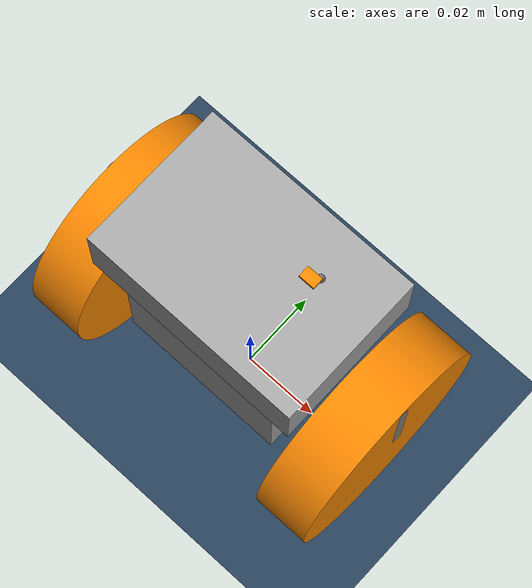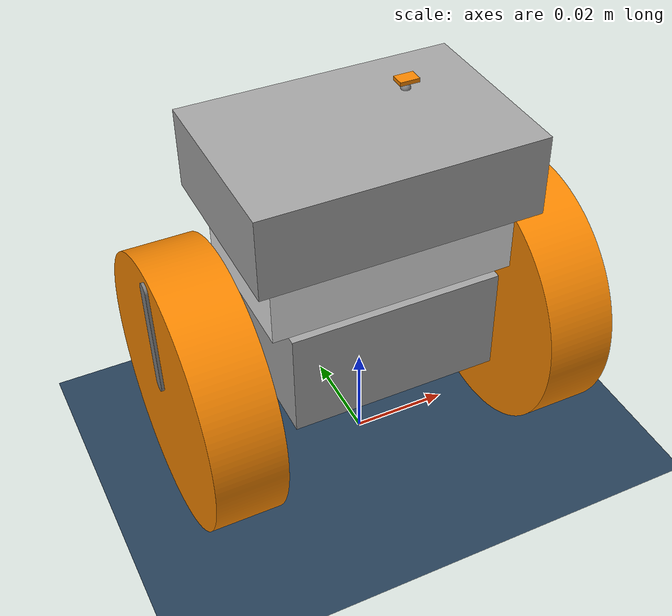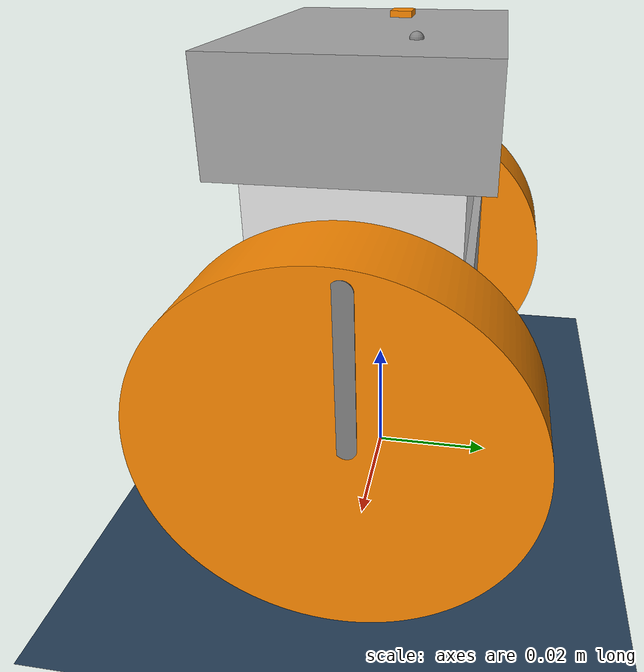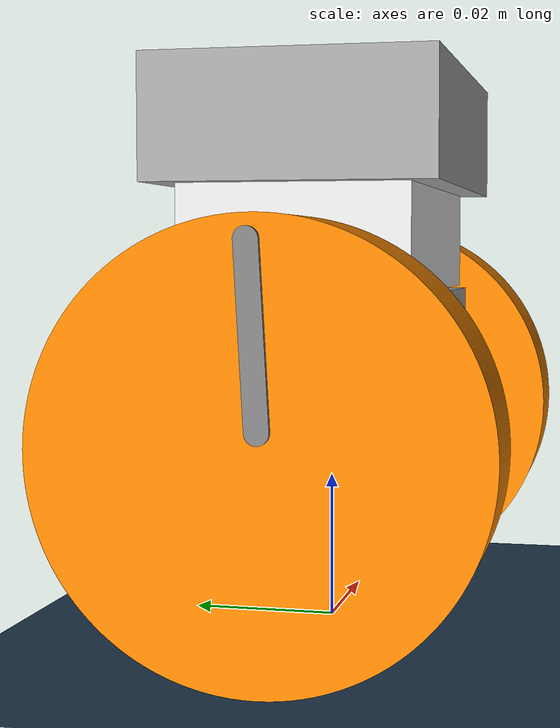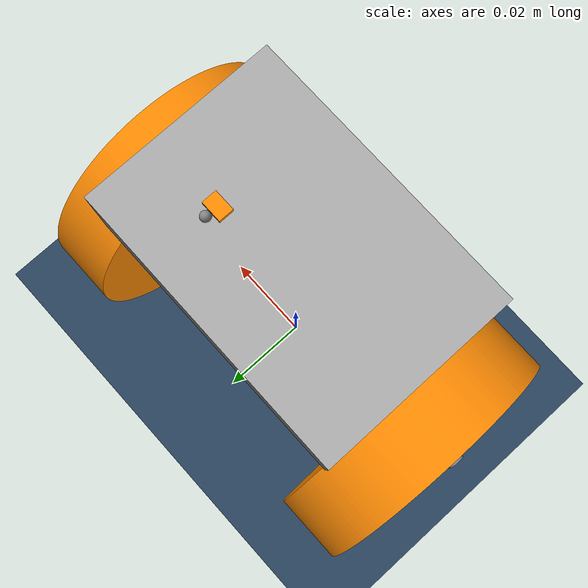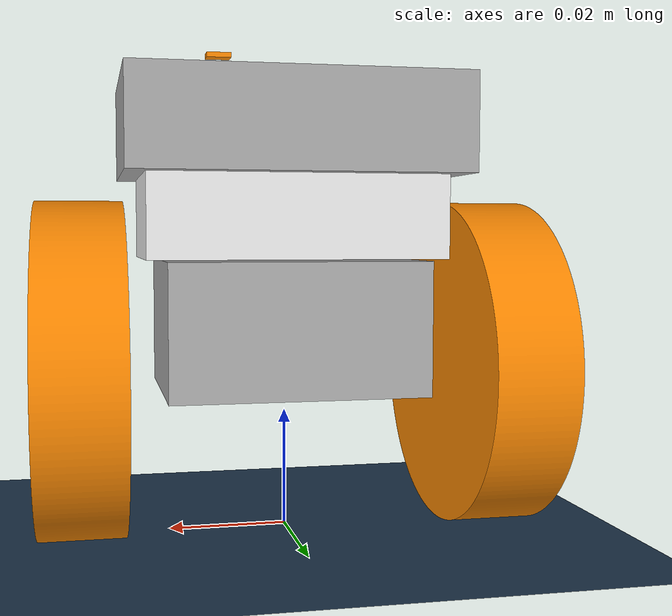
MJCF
<mujoco model="balance robot">
  <compiler angle="radian" meshdir="assembly_simplified/meshes/"/>

  <option timestep="0.005" integrator="implicitfast"/>

  <visual>
    <map znear="0.001" zfar="10"/>
    <scale contactwidth="0.1" contactheight="0.03"/>
  </visual>

  <default>
    <geom friction="0.8 0.005 0.005"/>
  </default>

  <asset>
    <texture type="2d" colorspace="auto" name="grid" builtin="checker" mark="edge" rgb1="0.1 0.2 0.3" rgb2="0.2 0.3 0.4" markrgb="0.2 0.3 0.4" width="300" height="300"/>
    <material name="grid" texture="grid" texuniform="true" texrepeat="2 2"/>
    <mesh name="motor_base" content_type="model/stl" file="Motor_base.stl"/>
    <mesh name="lipos" content_type="model/stl" file="Lipos.stl"/>
    <mesh name="electronics" content_type="model/stl" file="Electronics.stl"/>
    <mesh name="sensor_imu" content_type="model/stl" file="sensor_imu.stl"/>
    <mesh name="wheel_1" content_type="model/stl" file="Wheel.stl"/>
    <mesh name="mark_wheel_1" content_type="model/stl" file="mark_wheel.stl"/>
    <mesh name="wheel" content_type="model/stl" file="Wheel.stl"/>
    <mesh name="mark_wheel" content_type="model/stl" file="mark_wheel.stl"/>
  </asset>

  <worldbody>
    <geom name="ground" size="200 200 0.1" type="plane" material="grid"/>
    <light pos="0 0 100" dir="0 0 -1" ambient="0.4 0.4 0.4"/>
    <body name="root">
      <joint name="_root" type="free"/>
      <body name="motor_base">
        <geom name="geom_motor_base" pos="0 0 0.0348586" quat="1 0 0 0" type="mesh" mass="0.0422448" rgba="0.647059 0.647059 0.647059 1" mesh="motor_base"/>
        <body name="lipos" pos="0 0 0.0450128">
          <geom name="geom_lipos" pos="0 0.00015 -0.0101542" quat="1 0 0 0" type="mesh" mass="0.040025" rgba="0.901961 0.901961 0.901961 1" mesh="lipos"/>
          <body name="electronics" pos="0 0 0.01525">
            <geom name="geom_electronics" pos="0 0 -0.0254042" quat="1 0 0 0" type="mesh" mass="0.032" rgba="0.647059 0.647059 0.647059 1" mesh="electronics"/>
            <body name="sensor_imu" pos="0.013 0.007 0.0162">
              <geom name="geom_sensor_imu" pos="-0.013 -0.007 -0.0416042" type="mesh" mass="0" rgba="0.972549 0.529412 0.00392157 1" mesh="sensor_imu"/>
              <site name="site_sensor_imu" pos="0 0 0" size="0.001"/>
            </body>
          </body>
        </body>
      </body>
      <body name="sketch_wheelbase__1_">
        <body name="wheel_1" pos="-0.02765 0 0.028">
          <joint name="joint_wheel_left" pos="0 0 0" axis="1 0 0" armature="0.00018" damping="0.001" frictionloss="0.001"/>
          <geom name="geom_wheel_1" pos="0.02765 0 0.00685857" quat="0.999624 0.0274121 0 0" type="mesh" mass="0.02" rgba="0.972549 0.529412 0.00392157 1" mesh="wheel_1"/>
          <body name="mark_wheel_1" pos="-0.01415 0 0">
            <geom name="geom_mark_wheel_1" pos="0.0418 0 0.00685857" quat="0.999624 -0.0274121 0 0" type="mesh" mass="0" rgba="0.498039 0.498039 0.498039 1" mesh="mark_wheel_1"/>
          </body>
        </body>
        <body name="wheel" pos="0.02765 0 0.028">
          <joint name="joint_wheel_right" pos="0 0 0" axis="-1 0 0" armature="0.00018" damping="0.001" frictionloss="0.001"/>
          <geom name="geom_wheel" pos="0.0418 0 0.00685857" type="mesh" mass="0.02" rgba="0.972549 0.529412 0.00392157 1" mesh="wheel"/>
          <body name="mark_wheel" pos="0.01415 0 0">
            <geom name="geom_mark_wheel" pos="0.0418 0 0.00685857" quat="0.999624 0 0 -0.0274121" type="mesh" mass="0" rgba="0.498039 0.498039 0.498039 1" mesh="mark_wheel"/>
          </body>
        </body>
      </body>
    </body>
  </worldbody>

  <actuator>
    <general name="act_wheel_left" joint="joint_wheel_left" ctrlrange="-1 1" gear="0.075 0 0 0 0 0"/>
    <general name="act_wheel_right" joint="joint_wheel_right" ctrlrange="-1 1" gear="0.075 0 0 0 0 0"/>
  </actuator>

  <sensor>
    <framequat objtype="site" objname="site_sensor_imu" name="imu_quat"/>
    <accelerometer site="site_sensor_imu" name="imu_accel"/>
    <gyro site="site_sensor_imu" name="imu_gyro"/>
    <jointvel joint="joint_wheel_left" name="jointvel_wheel_left"/>
    <jointvel joint="joint_wheel_right" name="jointvel_wheel_right"/>
    <velocimeter site="site_sensor_imu" name="priv_vel"/>
  </sensor>
</mujoco>
